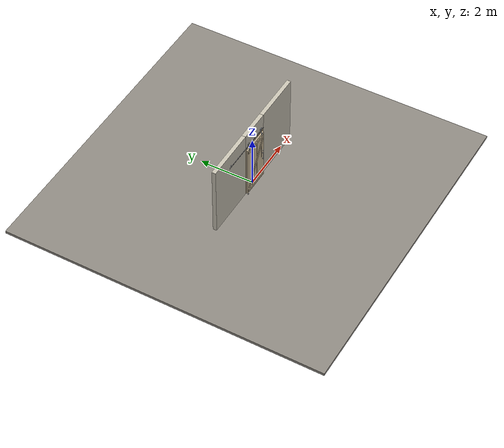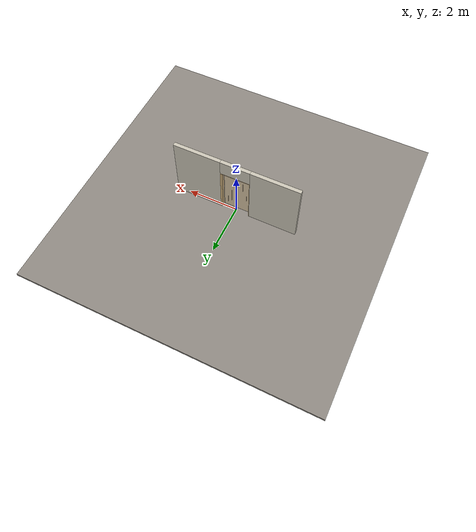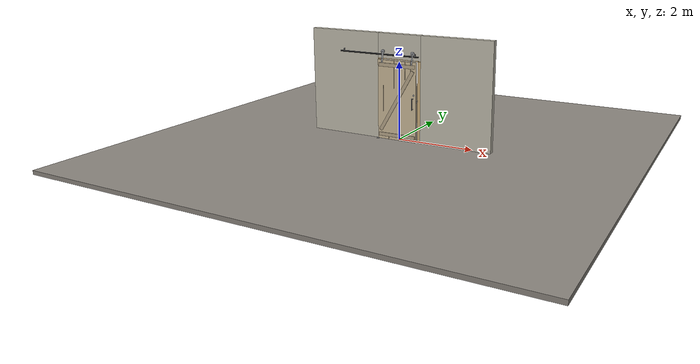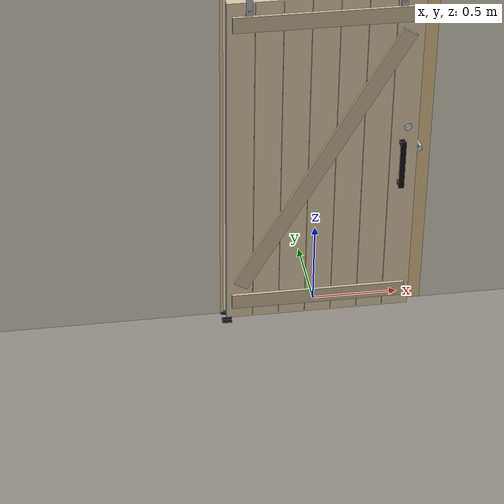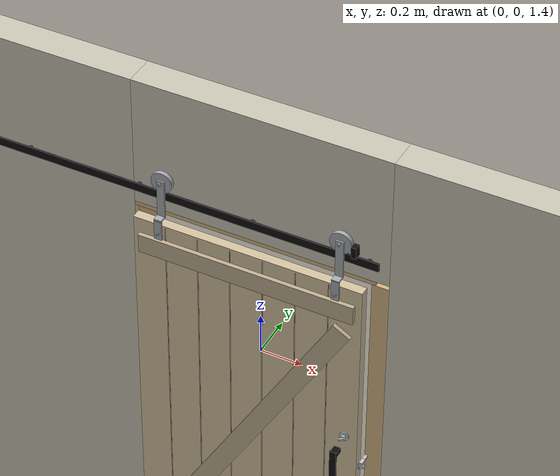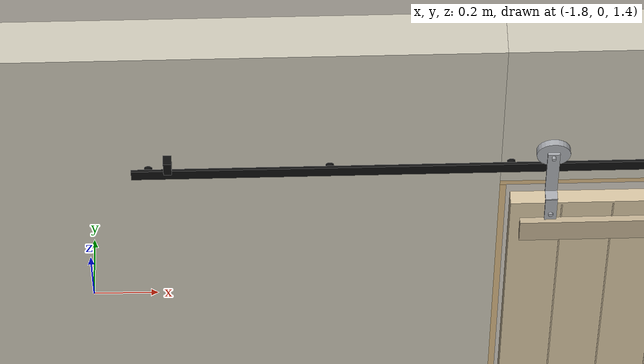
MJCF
<?xml version="1.0" ?>
<mujoco model="db0696_sliding_single_full">
  <compiler angle="radian" meshdir="../../hardware" texturedir="../../textures" autolimits="true" inertiafromgeom="false"/>
  <option timestep="0.002" integrator="implicitfast" cone="elliptic" impratio="10" noslip_iterations="3">
    <flag multiccd="enable"/>
  </option>
  <size memory="16M"/>
  <default>
    <geom condim="4" solref="0.005 1" solimp="0.95 0.99 0.001"/>
    <joint solreflimit="0.005 1" solimplimit="0.95 0.99 0.001"/>
    <tendon solreflimit="0.005 1"/>
    <equality solref="0.002 1"/>
  </default>
  <visual>
    <headlight ambient="0.4 0.4 0.4" diffuse="0.7 0.7 0.7" specular="0.2 0.2 0.2"/>
    <quality shadowsize="4096"/>
    <map znear="0.01" zfar="60"/>
  </visual>
  <asset>
    <mesh name="pull_2b47e55ff8" file="pull_2b47e55ff8.obj"/>
    <mesh name="thumbturn_eb5c9899a3" file="thumbturn_eb5c9899a3.obj"/>
    <material name="mat_floor" rgba="0.55 0.53 0.5 1" specular="0.2" shininess="0.15" reflectance="0"/>
    <material name="mat_wall" rgba="0.78 0.76 0.7 1" specular="0.2" shininess="0.1" reflectance="0"/>
    <material name="mat_frame" rgba="0.82 0.7 0.5 1" specular="0.2" shininess="0.45" reflectance="0"/>
    <material name="mat_track" rgba="0.05 0.05 0.05 1" specular="0.38" shininess="0.3" reflectance="0.12"/>
    <material name="mat_leaf" rgba="0.82 0.75 0.62 1" specular="0.2" shininess="0.55" reflectance="0"/>
    <material name="mat_leaf_brace" rgba="0.738 0.675 0.558 1" specular="0.2" shininess="0.2" reflectance="0"/>
    <material name="mat_roller" rgba="0.65 0.66 0.68 1" specular="0.74" shininess="0.5" reflectance="0.36"/>
    <material name="mat_op_black_matte_metal" rgba="0.05 0.05 0.05 1" specular="0.38" shininess="0.3" reflectance="0.12"/>
    <material name="mat_hook" rgba="0.75 0.76 0.77 1" specular="0.8" shininess="0.65" reflectance="0.4"/>
    <texture name="skybox" type="skybox" builtin="gradient" rgb1="0.6 0.7 0.85" rgb2="0.9 0.92 0.95" width="256" height="256"/>
  </asset>
  <worldbody>
    <light name="sun" pos="1.5 -2.5 4" dir="-0.3 0.5 -0.8" directional="true" diffuse="0.8 0.8 0.8" specular="0.3 0.3 0.3" castshadow="true"/>
    <light name="fill" pos="-1.5 2.5 3" dir="0.3 -0.5 -0.7" directional="true" diffuse="0.35 0.35 0.4" castshadow="false"/>
    <camera name="robot_view" pos="0 -2.54875 1.73965" xyaxes="1 0 0 0 0.26963 0.962964" fovy="52"/>
    <camera name="far_view" pos="0 2.54875 1.73965" xyaxes="-1 0 0 0 -0.26963 0.962964" fovy="52"/>
    <camera name="iso" pos="1.93705 -2.14095 2.14745" xyaxes="0.741536 0.670913 0 -0.242917 0.268487 0.932151" fovy="46"/>
    <camera name="detail_handle" pos="0.6235 -0.9815 1.28" xyaxes="0.97561 0.219512 0 -0.070934 0.315262 0.94635" fovy="38"/>
    <geom name="floor" type="box" size="6 6 0.05" pos="0 0 -0.05" material="mat_floor" group="0" contype="1" conaffinity="1" friction="0.8 0.005 0.0001" density="2400"/>
    <geom name="wall_left" type="box" size="0.96875 0.0725 1.35" pos="-1.53125 0 1.35" material="mat_wall" group="0" contype="1" conaffinity="1" friction="0.6 0.005 0.0001" density="800"/>
    <geom name="wall_right" type="box" size="0.93875 0.0725 1.35" pos="1.56125 0 1.35" material="mat_wall" group="0" contype="1" conaffinity="1" friction="0.6 0.005 0.0001" density="800"/>
    <geom name="wall_header" type="box" size="0.5925 0.0725 0.3145" pos="0.03 0 2.3855" material="mat_wall" group="0" contype="1" conaffinity="1" friction="0.6 0.005 0.0001" density="800"/>
    <geom name="jamb_l" type="box" size="0.0095 0.0725 1.026" pos="-0.553 0 1.026" material="mat_frame" group="0" contype="1" conaffinity="1" friction="0.6 0.005 0.0001" density="300"/>
    <geom name="jamb_head" type="box" size="0.5625 0.0725 0.0095" pos="0 0 2.0615" material="mat_frame" group="0" contype="1" conaffinity="1" friction="0.6 0.005 0.0001" density="300"/>
    <geom name="flat_track" type="box" size="1.117 0.004 0.02" pos="-0.5335 -0.0945 2.172" material="mat_track" group="0" contype="1" conaffinity="1" friction="0.6 0.005 0.0001" density="7850"/>
    <geom name="track_standoff_0" type="cylinder" size="0.012 0.009" pos="-1.6005 -0.0815 2.172" quat="0.707107 -0.707107 0 0" material="mat_track" group="1" contype="0" conaffinity="0" density="7850"/>
    <geom name="track_standoff_1" type="cylinder" size="0.012 0.009" pos="-1.067 -0.0815 2.172" quat="0.707107 -0.707107 0 0" material="mat_track" group="1" contype="0" conaffinity="0" density="7850"/>
    <geom name="track_standoff_2" type="cylinder" size="0.012 0.009" pos="-0.5335 -0.0815 2.172" quat="0.707107 -0.707107 0 0" material="mat_track" group="1" contype="0" conaffinity="0" density="7850"/>
    <geom name="track_standoff_3" type="cylinder" size="0.012 0.009" pos="0 -0.0815 2.172" quat="0.707107 -0.707107 0 0" material="mat_track" group="1" contype="0" conaffinity="0" density="7850"/>
    <geom name="track_standoff_4" type="cylinder" size="0.012 0.009" pos="0.5335 -0.0815 2.172" quat="0.707107 -0.707107 0 0" material="mat_track" group="1" contype="0" conaffinity="0" density="7850"/>
    <geom name="leaf_track_stop_l" type="box" size="0.012 0.016 0.027" pos="-1.5425 -0.0945 2.217" material="mat_track" group="0" contype="1" conaffinity="1" friction="0.6 0.005 0.0001" density="7850"/>
    <geom name="leaf_track_stop_r" type="box" size="0.012 0.016 0.027" pos="0.4755 -0.0945 2.217" material="mat_track" group="0" contype="1" conaffinity="1" friction="0.6 0.005 0.0001" density="7850"/>
    <geom name="leaf_hook_keeper" type="box" size="0.008 0.015 0.006" pos="0.5515 -0.1145 1.08" material="mat_hook" group="0" contype="1" conaffinity="1" friction="0.6 0.005 0.0001" density="7900"/>
    <geom name="jamb_latch_0" type="box" size="0.0395 0.0725 1.026" pos="0.583 0 1.026" material="mat_frame" group="0" contype="1" conaffinity="1" friction="0.6 0.005 0.0001" density="300"/>
    <geom name="floor_guide_n" type="box" size="0.028 0.004 0.009" pos="-0.5335 -0.1415 0.009" material="mat_track" group="0" contype="1" conaffinity="1" friction="0.6 0.005 0.0001" density="7850"/>
    <geom name="floor_guide_n_foot" type="box" size="0.028 0.018 0.002" pos="-0.5335 -0.1555 0.002" material="mat_track" group="0" contype="1" conaffinity="1" friction="0.6 0.005 0.0001" density="7850"/>
    <geom name="floor_guide_p" type="box" size="0.028 0.004 0.009" pos="-0.5335 -0.0875 0.009" material="mat_track" group="0" contype="1" conaffinity="1" friction="0.6 0.005 0.0001" density="7850"/>
    <geom name="floor_guide_p_foot" type="box" size="0.028 0.018 0.002" pos="-0.5335 -0.0735 0.002" material="mat_track" group="0" contype="1" conaffinity="1" friction="0.6 0.005 0.0001" density="7850"/>
    <geom name="leaf_hook_keeper_bracket" type="box" size="0.0064 0.014 0.005" pos="0.5515 -0.086 1.08" material="mat_hook" group="1" contype="0" conaffinity="0" density="7850"/>
    <site name="approach_point" pos="0 -1.5 0" quat="1 0 0 0" size="0.05" rgba="0.2 0.9 0.2 0.5" group="4"/>
    <site name="goal_point" pos="0 1.5 0" quat="1 0 0 0" size="0.05" rgba="0.2 0.9 0.2 0.5" group="4"/>
    <site name="door_plane_center" pos="0 0 1.026" quat="1 0 0 0" size="0.02" rgba="0.2 0.9 0.2 0.5" group="4"/>
    <body name="leaf" pos="0 -0.1145 0">
      <inertial pos="0.003002 0.000076 1.091935" mass="72.297758" quat="0.500599 0.498954 -0.500251 0.500194" diaginertia="7.231758995 28.419674976 35.623158594"/>
      <joint name="leaf_slide" type="slide" axis="-1 0 0" limited="true" range="0 1.067" damping="5.627438" frictionloss="14.229204" armature="0.5"/>
      <geom name="leaf_slab" type="box" size="0.5335 0.022 1.016" pos="0 0 1.028" material="mat_leaf" group="0" contype="1" conaffinity="1" friction="0.4 0.005 0.0001" density="1"/>
      <geom name="leaf_plank_gap_1" type="box" size="0.002 0.023 1.006" pos="-0.381071 0 1.028" material="mat_leaf_brace" group="1" contype="0" conaffinity="0" density="1"/>
      <geom name="leaf_plank_gap_2" type="box" size="0.002 0.023 1.006" pos="-0.228643 0 1.028" material="mat_leaf_brace" group="1" contype="0" conaffinity="0" density="1"/>
      <geom name="leaf_plank_gap_3" type="box" size="0.002 0.023 1.006" pos="-0.076214 0 1.028" material="mat_leaf_brace" group="1" contype="0" conaffinity="0" density="1"/>
      <geom name="leaf_plank_gap_4" type="box" size="0.002 0.023 1.006" pos="0.076214 0 1.028" material="mat_leaf_brace" group="1" contype="0" conaffinity="0" density="1"/>
      <geom name="leaf_plank_gap_5" type="box" size="0.002 0.023 1.006" pos="0.228643 0 1.028" material="mat_leaf_brace" group="1" contype="0" conaffinity="0" density="1"/>
      <geom name="leaf_plank_gap_6" type="box" size="0.002 0.023 1.006" pos="0.381071 0 1.028" material="mat_leaf_brace" group="1" contype="0" conaffinity="0" density="1"/>
      <geom name="leaf_batten_13" type="box" size="0.5035 0.01 0.045" pos="0 -0.032 0.132" material="mat_leaf_brace" group="1" contype="0" conaffinity="0" density="1"/>
      <geom name="leaf_batten_192" type="box" size="0.5035 0.01 0.045" pos="0 -0.032 1.924" material="mat_leaf_brace" group="1" contype="0" conaffinity="0" density="1"/>
      <geom name="leaf_brace_z" type="box" size="0.910079 0.01 0.045" pos="0 -0.032 1.028" quat="0.865567 0 -0.500793 0" material="mat_leaf_brace" group="1" contype="0" conaffinity="0" density="1"/>
      <geom name="leaf_hanger_wheel_0" type="cylinder" size="0.05 0.01" pos="-0.4135 0.02 2.242" quat="0.707107 -0.707107 0 0" material="mat_roller" group="1" contype="0" conaffinity="0" density="7850"/>
      <geom name="leaf_hanger_mount_0" type="box" size="0.018 0.004 0.0725" pos="-0.4135 -0.026 1.9965" material="mat_roller" group="1" contype="0" conaffinity="0" density="7850"/>
      <geom name="leaf_hanger_strap_0" type="box" size="0.018 0.004 0.0925" pos="-0.4135 0.006 2.1615" material="mat_roller" group="1" contype="0" conaffinity="0" density="7850"/>
      <geom name="leaf_hanger_bend_0" type="box" size="0.018 0.02 0.004" pos="-0.4135 -0.01 2.069" material="mat_roller" group="1" contype="0" conaffinity="0" density="7850"/>
      <geom name="leaf_hanger_axle_0" type="cylinder" size="0.006 0.021" pos="-0.4135 0.013 2.242" quat="0.707107 -0.707107 0 0" material="mat_roller" group="1" contype="0" conaffinity="0" density="7850"/>
      <geom name="leaf_hanger_bolt_0_90" type="cylinder" size="0.007 0.004" pos="-0.4135 -0.032 1.954" quat="0.707107 -0.707107 0 0" material="mat_roller" group="1" contype="0" conaffinity="0" density="7850"/>
      <geom name="leaf_hanger_bolt_0_45" type="cylinder" size="0.007 0.004" pos="-0.4135 -0.032 1.999" quat="0.707107 -0.707107 0 0" material="mat_roller" group="1" contype="0" conaffinity="0" density="7850"/>
      <geom name="leaf_hanger_wheel_1" type="cylinder" size="0.05 0.01" pos="0.4135 0.02 2.242" quat="0.707107 -0.707107 0 0" material="mat_roller" group="1" contype="0" conaffinity="0" density="7850"/>
      <geom name="leaf_hanger_mount_1" type="box" size="0.018 0.004 0.0725" pos="0.4135 -0.026 1.9965" material="mat_roller" group="1" contype="0" conaffinity="0" density="7850"/>
      <geom name="leaf_hanger_strap_1" type="box" size="0.018 0.004 0.0925" pos="0.4135 0.006 2.1615" material="mat_roller" group="1" contype="0" conaffinity="0" density="7850"/>
      <geom name="leaf_hanger_bend_1" type="box" size="0.018 0.02 0.004" pos="0.4135 -0.01 2.069" material="mat_roller" group="1" contype="0" conaffinity="0" density="7850"/>
      <geom name="leaf_hanger_axle_1" type="cylinder" size="0.006 0.021" pos="0.4135 0.013 2.242" quat="0.707107 -0.707107 0 0" material="mat_roller" group="1" contype="0" conaffinity="0" density="7850"/>
      <geom name="leaf_hanger_bolt_1_90" type="cylinder" size="0.007 0.004" pos="0.4135 -0.032 1.954" quat="0.707107 -0.707107 0 0" material="mat_roller" group="1" contype="0" conaffinity="0" density="7850"/>
      <geom name="leaf_hanger_bolt_1_45" type="cylinder" size="0.007 0.004" pos="0.4135 -0.032 1.999" quat="0.707107 -0.707107 0 0" material="mat_roller" group="1" contype="0" conaffinity="0" density="7850"/>
      <geom name="leaf_pull_n" type="mesh" mesh="pull_2b47e55ff8" pos="0.4435 -0.022 1" quat="0.707107 0.707107 0 0" material="mat_op_black_matte_metal" group="1" contype="0" conaffinity="0" density="3000"/>
      <geom name="leaf_pull_col_n" type="capsule" size="0.006 0.13" pos="0.4435 -0.067 1" material="mat_op_black_matte_metal" group="3" contype="1" conaffinity="1" rgba="0.8 0.3 0.3 0.25" friction="0.7 0.01 0.0001" density="3000"/>
      <geom name="leaf_hook_faceplate" type="box" size="0.0006 0.011 0.045" pos="0.5329 0 1.08" material="mat_hook" group="1" contype="0" conaffinity="0" density="7900"/>
      <site name="leaf_pull_grip_n" pos="0.4435 -0.067 1" quat="1 0 0 0" size="0.012" rgba="0.2 0.9 0.2 0.5" group="4"/>
      <site name="leaf_edge_mid" pos="0.5335 0 1.028" quat="1 0 0 0" size="0.02" rgba="0.2 0.9 0.2 0.5" group="4"/>
      <body name="leaf_hook_thumbturn" pos="0.4735 -0.022 1.22">
        <inertial pos="0 -0.012928 0" mass="0.178946" quat="0.678504 0.199079 -0.199079 -0.678504" diaginertia="0.000026045 0.000026215 0.000032438"/>
        <joint name="leaf_hook_thumbturn_hinge" type="hinge" axis="0 1 0" limited="true" range="0 1" damping="0.05" frictionloss="0.25" armature="0.005" ref="1"/>
        <geom name="leaf_hook_tt_mesh" type="mesh" mesh="thumbturn_eb5c9899a3" pos="0 0 0" quat="0.620545 0.620545 0.339005 -0.339005" material="mat_hook" group="0" contype="1" conaffinity="1" friction="0.6 0.005 0.0001" density="7100"/>
        <geom name="leaf_hook_tt_col" type="box" size="0.006 0.012 0.016" pos="0 -0.02 0" quat="0.877583 0 0.479426 0" material="mat_hook" group="3" contype="1" conaffinity="1" rgba="0.8 0.3 0.3 0.25" friction="0.6 0.005 0.0001" density="7100"/>
        <site name="leaf_hook_tt_grip" pos="0 -0.03 0" quat="0.877583 0 0.479426 0" size="0.01" rgba="0.2 0.9 0.2 0.5" group="4"/>
      </body>
      <body name="leaf_hook" pos="0.5335 0 1.08">
        <inertial pos="0.006651 0 -0.027503" mass="0.072048" quat="-0.148813 -0.148813 0.69127 -0.69127" diaginertia="0.000005266 0.00001511 0.000019175"/>
        <joint name="leaf_hook_hinge" type="hinge" axis="0 1 0" limited="true" range="0 1" damping="0.05" frictionloss="0.1" armature="0.005" ref="1"/>
        <geom name="leaf_hook_arm" type="box" size="0.022 0.005 0.006" pos="-0.002657 0 -0.025474" quat="0.877583 0 0.479426 0" material="mat_hook" group="0" contype="1" conaffinity="1" friction="0.6 0.005 0.0001" density="7900"/>
        <geom name="leaf_hook_tip" type="box" size="0.006 0.005 0.016" pos="0.019451 0 -0.030293" quat="0.877583 0 0.479426 0" material="mat_hook" group="0" contype="1" conaffinity="1" friction="0.6 0.005 0.0001" density="7900"/>
      </body>
    </body>
  </worldbody>
  <equality>
    <joint name="leaf_hook_couple" joint1="leaf_hook_hinge" joint2="leaf_hook_thumbturn_hinge" polycoef="0 1 0 0 0" active="true"/>
  </equality>
  <sensor>
    <jointpos name="leaf_slide_pos" joint="leaf_slide"/>
    <jointvel name="leaf_slide_vel" joint="leaf_slide"/>
    <jointpos name="leaf_hook_thumbturn_hinge_pos" joint="leaf_hook_thumbturn_hinge"/>
    <jointvel name="leaf_hook_thumbturn_hinge_vel" joint="leaf_hook_thumbturn_hinge"/>
    <jointpos name="leaf_hook_hinge_pos" joint="leaf_hook_hinge"/>
    <jointvel name="leaf_hook_hinge_vel" joint="leaf_hook_hinge"/>
  </sensor>
</mujoco>
